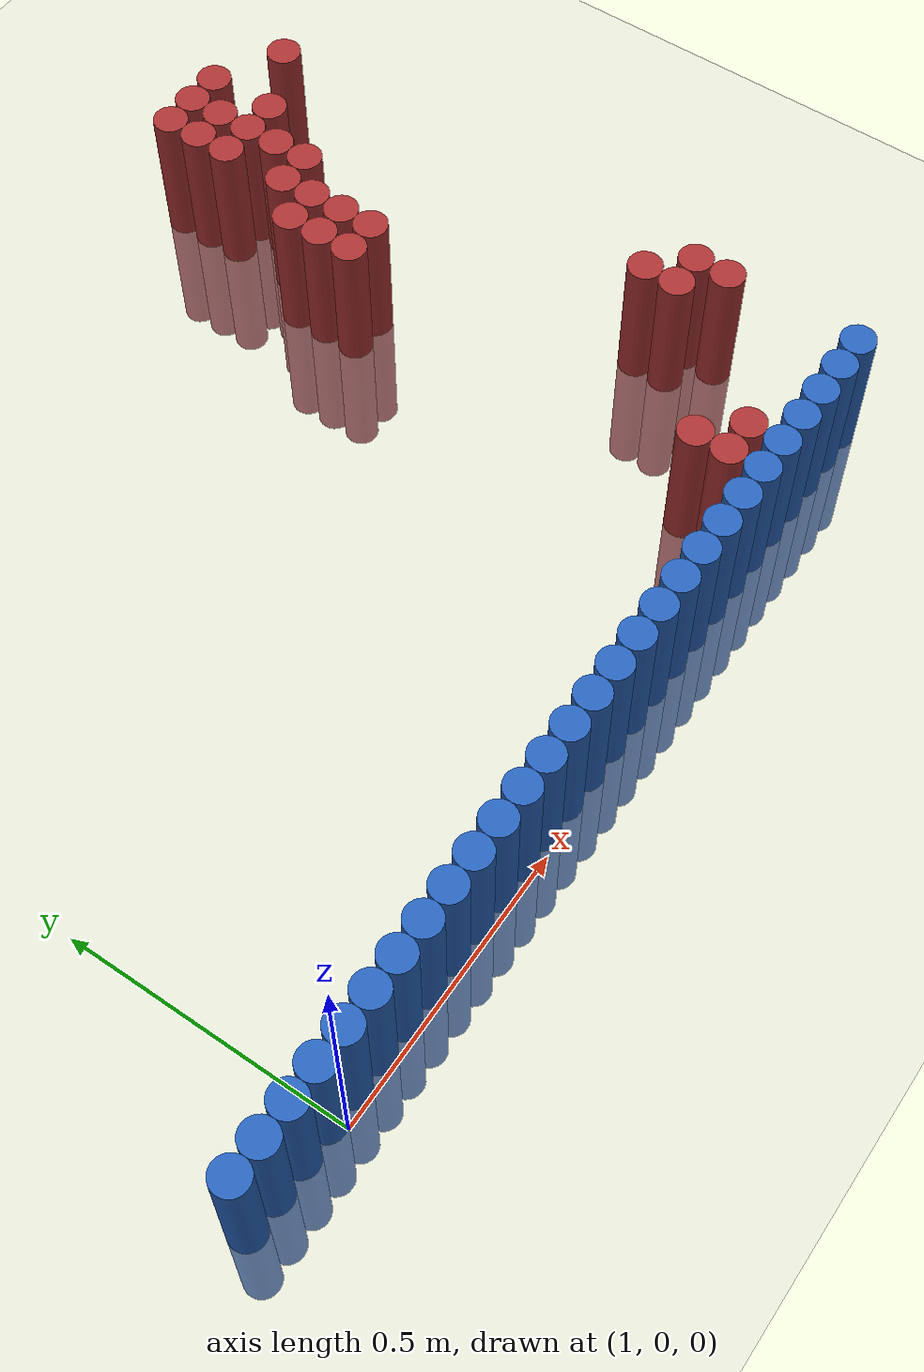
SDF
<sdf version="1.6">
 <world name="default">
  <model name="ground_plane">
   <static>1</static>
   <link name="link">
    <collision name="collision">
     <geometry><plane><normal>0 0 1</normal><size>100 100</size></plane></geometry>
     <surface><friction><ode><mu>100</mu><mu2>50</mu2></ode></friction></surface>
    </collision>
    <visual name="visual">
     <cast_shadows>0</cast_shadows>
     <geometry><plane><normal>0 0 1</normal><size>100 100</size></plane></geometry>
     <material>
      <script><uri>file://media/materials/scripts/gazebo.material</uri><name>Gazebo/Grey</name></script>
     </material>
    </visual>
   </link>
  </model>
  <model name="unit_cylinder_53">
   <static>1</static>
   <pose>0.810000 0.030000 0.000000 0.000000 0.000000 0.000000</pose>
   <link name="link">
    <inertial>
     <mass>1</mass>
     <inertia><ixx>0.145833</ixx><ixy>0</ixy><ixz>0</ixz><iyy>0.145833</iyy><iyz>0</iyz><izz>0.125</izz></inertia>
    </inertial>
    <collision name="collision">
     <geometry><cylinder><radius>0.030000</radius><length>0.5</length></cylinder></geometry>
    </collision>
    <visual name="visual">
     <geometry><cylinder><radius>0.030000</radius><length>0.5</length></cylinder></geometry>
     <material>
      <ambient>0.152000 0.379000 0.720000 1</ambient>
      <diffuse>0.152000 0.379000 0.720000 1</diffuse>
     </material>
     <material>
      <script><name>Gazebo/Grey</name><uri>file://media/materials/scripts/gazebo.material</uri></script>
     </material>
    </visual>
   </link>
  </model>
  <model name="unit_cylinder_55">
   <static>1</static>
   <pose>0.870000 0.030000 0.000000 0.000000 0.000000 0.000000</pose>
   <link name="link">
    <inertial>
     <mass>1</mass>
     <inertia><ixx>0.145833</ixx><ixy>0</ixy><ixz>0</ixz><iyy>0.145833</iyy><iyz>0</iyz><izz>0.125</izz></inertia>
    </inertial>
    <collision name="collision">
     <geometry><cylinder><radius>0.030000</radius><length>0.5</length></cylinder></geometry>
    </collision>
    <visual name="visual">
     <geometry><cylinder><radius>0.030000</radius><length>0.5</length></cylinder></geometry>
     <material>
      <ambient>0.152000 0.379000 0.720000 1</ambient>
      <diffuse>0.152000 0.379000 0.720000 1</diffuse>
     </material>
     <material>
      <script><name>Gazebo/Grey</name><uri>file://media/materials/scripts/gazebo.material</uri></script>
     </material>
    </visual>
   </link>
  </model>
  <model name="unit_cylinder_57">
   <static>1</static>
   <pose>0.930000 0.030000 0.000000 0.000000 0.000000 0.000000</pose>
   <link name="link">
    <inertial>
     <mass>1</mass>
     <inertia><ixx>0.145833</ixx><ixy>0</ixy><ixz>0</ixz><iyy>0.145833</iyy><iyz>0</iyz><izz>0.125</izz></inertia>
    </inertial>
    <collision name="collision">
     <geometry><cylinder><radius>0.030000</radius><length>0.5</length></cylinder></geometry>
    </collision>
    <visual name="visual">
     <geometry><cylinder><radius>0.030000</radius><length>0.5</length></cylinder></geometry>
     <material>
      <ambient>0.152000 0.379000 0.720000 1</ambient>
      <diffuse>0.152000 0.379000 0.720000 1</diffuse>
     </material>
     <material>
      <script><name>Gazebo/Grey</name><uri>file://media/materials/scripts/gazebo.material</uri></script>
     </material>
    </visual>
   </link>
  </model>
  <model name="unit_cylinder_59">
   <static>1</static>
   <pose>0.990000 0.030000 0.000000 0.000000 0.000000 0.000000</pose>
   <link name="link">
    <inertial>
     <mass>1</mass>
     <inertia><ixx>0.145833</ixx><ixy>0</ixy><ixz>0</ixz><iyy>0.145833</iyy><iyz>0</iyz><izz>0.125</izz></inertia>
    </inertial>
    <collision name="collision">
     <geometry><cylinder><radius>0.030000</radius><length>0.5</length></cylinder></geometry>
    </collision>
    <visual name="visual">
     <geometry><cylinder><radius>0.030000</radius><length>0.5</length></cylinder></geometry>
     <material>
      <ambient>0.152000 0.379000 0.720000 1</ambient>
      <diffuse>0.152000 0.379000 0.720000 1</diffuse>
     </material>
     <material>
      <script><name>Gazebo/Grey</name><uri>file://media/materials/scripts/gazebo.material</uri></script>
     </material>
    </visual>
   </link>
  </model>
  <model name="unit_cylinder_61">
   <static>1</static>
   <pose>1.050000 0.030000 0.000000 0.000000 0.000000 0.000000</pose>
   <link name="link">
    <inertial>
     <mass>1</mass>
     <inertia><ixx>0.145833</ixx><ixy>0</ixy><ixz>0</ixz><iyy>0.145833</iyy><iyz>0</iyz><izz>0.125</izz></inertia>
    </inertial>
    <collision name="collision">
     <geometry><cylinder><radius>0.030000</radius><length>0.5</length></cylinder></geometry>
    </collision>
    <visual name="visual">
     <geometry><cylinder><radius>0.030000</radius><length>0.5</length></cylinder></geometry>
     <material>
      <ambient>0.152000 0.379000 0.720000 1</ambient>
      <diffuse>0.152000 0.379000 0.720000 1</diffuse>
     </material>
     <material>
      <script><name>Gazebo/Grey</name><uri>file://media/materials/scripts/gazebo.material</uri></script>
     </material>
    </visual>
   </link>
  </model>
  <model name="unit_cylinder_63">
   <static>1</static>
   <pose>1.110000 0.030000 0.000000 0.000000 0.000000 0.000000</pose>
   <link name="link">
    <inertial>
     <mass>1</mass>
     <inertia><ixx>0.145833</ixx><ixy>0</ixy><ixz>0</ixz><iyy>0.145833</iyy><iyz>0</iyz><izz>0.125</izz></inertia>
    </inertial>
    <collision name="collision">
     <geometry><cylinder><radius>0.030000</radius><length>0.5</length></cylinder></geometry>
    </collision>
    <visual name="visual">
     <geometry><cylinder><radius>0.030000</radius><length>0.5</length></cylinder></geometry>
     <material>
      <ambient>0.152000 0.379000 0.720000 1</ambient>
      <diffuse>0.152000 0.379000 0.720000 1</diffuse>
     </material>
     <material>
      <script><name>Gazebo/Grey</name><uri>file://media/materials/scripts/gazebo.material</uri></script>
     </material>
    </visual>
   </link>
  </model>
  <model name="unit_cylinder_65">
   <static>1</static>
   <pose>1.170000 0.030000 0.000000 0.000000 0.000000 0.000000</pose>
   <link name="link">
    <inertial>
     <mass>1</mass>
     <inertia><ixx>0.145833</ixx><ixy>0</ixy><ixz>0</ixz><iyy>0.145833</iyy><iyz>0</iyz><izz>0.125</izz></inertia>
    </inertial>
    <collision name="collision">
     <geometry><cylinder><radius>0.030000</radius><length>0.5</length></cylinder></geometry>
    </collision>
    <visual name="visual">
     <geometry><cylinder><radius>0.030000</radius><length>0.5</length></cylinder></geometry>
     <material>
      <ambient>0.152000 0.379000 0.720000 1</ambient>
      <diffuse>0.152000 0.379000 0.720000 1</diffuse>
     </material>
     <material>
      <script><name>Gazebo/Grey</name><uri>file://media/materials/scripts/gazebo.material</uri></script>
     </material>
    </visual>
   </link>
  </model>
  <model name="unit_cylinder_67">
   <static>1</static>
   <pose>1.230000 0.030000 0.000000 0.000000 0.000000 0.000000</pose>
   <link name="link">
    <inertial>
     <mass>1</mass>
     <inertia><ixx>0.145833</ixx><ixy>0</ixy><ixz>0</ixz><iyy>0.145833</iyy><iyz>0</iyz><izz>0.125</izz></inertia>
    </inertial>
    <collision name="collision">
     <geometry><cylinder><radius>0.030000</radius><length>0.5</length></cylinder></geometry>
    </collision>
    <visual name="visual">
     <geometry><cylinder><radius>0.030000</radius><length>0.5</length></cylinder></geometry>
     <material>
      <ambient>0.152000 0.379000 0.720000 1</ambient>
      <diffuse>0.152000 0.379000 0.720000 1</diffuse>
     </material>
     <material>
      <script><name>Gazebo/Grey</name><uri>file://media/materials/scripts/gazebo.material</uri></script>
     </material>
    </visual>
   </link>
  </model>
  <model name="unit_cylinder_69">
   <static>1</static>
   <pose>1.290000 0.030000 0.000000 0.000000 0.000000 0.000000</pose>
   <link name="link">
    <inertial>
     <mass>1</mass>
     <inertia><ixx>0.145833</ixx><ixy>0</ixy><ixz>0</ixz><iyy>0.145833</iyy><iyz>0</iyz><izz>0.125</izz></inertia>
    </inertial>
    <collision name="collision">
     <geometry><cylinder><radius>0.030000</radius><length>0.5</length></cylinder></geometry>
    </collision>
    <visual name="visual">
     <geometry><cylinder><radius>0.030000</radius><length>0.5</length></cylinder></geometry>
     <material>
      <ambient>0.152000 0.379000 0.720000 1</ambient>
      <diffuse>0.152000 0.379000 0.720000 1</diffuse>
     </material>
     <material>
      <script><name>Gazebo/Grey</name><uri>file://media/materials/scripts/gazebo.material</uri></script>
     </material>
    </visual>
   </link>
  </model>
  <model name="unit_cylinder_71">
   <static>1</static>
   <pose>1.350000 0.030000 0.000000 0.000000 0.000000 0.000000</pose>
   <link name="link">
    <inertial>
     <mass>1</mass>
     <inertia><ixx>0.145833</ixx><ixy>0</ixy><ixz>0</ixz><iyy>0.145833</iyy><iyz>0</iyz><izz>0.125</izz></inertia>
    </inertial>
    <collision name="collision">
     <geometry><cylinder><radius>0.030000</radius><length>0.5</length></cylinder></geometry>
    </collision>
    <visual name="visual">
     <geometry><cylinder><radius>0.030000</radius><length>0.5</length></cylinder></geometry>
     <material>
      <ambient>0.152000 0.379000 0.720000 1</ambient>
      <diffuse>0.152000 0.379000 0.720000 1</diffuse>
     </material>
     <material>
      <script><name>Gazebo/Grey</name><uri>file://media/materials/scripts/gazebo.material</uri></script>
     </material>
    </visual>
   </link>
  </model>
  <model name="unit_cylinder_73">
   <static>1</static>
   <pose>1.410000 0.030000 0.000000 0.000000 0.000000 0.000000</pose>
   <link name="link">
    <inertial>
     <mass>1</mass>
     <inertia><ixx>0.145833</ixx><ixy>0</ixy><ixz>0</ixz><iyy>0.145833</iyy><iyz>0</iyz><izz>0.125</izz></inertia>
    </inertial>
    <collision name="collision">
     <geometry><cylinder><radius>0.030000</radius><length>0.5</length></cylinder></geometry>
    </collision>
    <visual name="visual">
     <geometry><cylinder><radius>0.030000</radius><length>0.5</length></cylinder></geometry>
     <material>
      <ambient>0.152000 0.379000 0.720000 1</ambient>
      <diffuse>0.152000 0.379000 0.720000 1</diffuse>
     </material>
     <material>
      <script><name>Gazebo/Grey</name><uri>file://media/materials/scripts/gazebo.material</uri></script>
     </material>
    </visual>
   </link>
  </model>
  <model name="unit_cylinder_75">
   <static>1</static>
   <pose>1.470000 0.030000 0.000000 0.000000 0.000000 0.000000</pose>
   <link name="link">
    <inertial>
     <mass>1</mass>
     <inertia><ixx>0.145833</ixx><ixy>0</ixy><ixz>0</ixz><iyy>0.145833</iyy><iyz>0</iyz><izz>0.125</izz></inertia>
    </inertial>
    <collision name="collision">
     <geometry><cylinder><radius>0.030000</radius><length>0.5</length></cylinder></geometry>
    </collision>
    <visual name="visual">
     <geometry><cylinder><radius>0.030000</radius><length>0.5</length></cylinder></geometry>
     <material>
      <ambient>0.152000 0.379000 0.720000 1</ambient>
      <diffuse>0.152000 0.379000 0.720000 1</diffuse>
     </material>
     <material>
      <script><name>Gazebo/Grey</name><uri>file://media/materials/scripts/gazebo.material</uri></script>
     </material>
    </visual>
   </link>
  </model>
  <model name="unit_cylinder_77">
   <static>1</static>
   <pose>1.530000 0.030000 0.000000 0.000000 0.000000 0.000000</pose>
   <link name="link">
    <inertial>
     <mass>1</mass>
     <inertia><ixx>0.145833</ixx><ixy>0</ixy><ixz>0</ixz><iyy>0.145833</iyy><iyz>0</iyz><izz>0.125</izz></inertia>
    </inertial>
    <collision name="collision">
     <geometry><cylinder><radius>0.030000</radius><length>0.5</length></cylinder></geometry>
    </collision>
    <visual name="visual">
     <geometry><cylinder><radius>0.030000</radius><length>0.5</length></cylinder></geometry>
     <material>
      <ambient>0.152000 0.379000 0.720000 1</ambient>
      <diffuse>0.152000 0.379000 0.720000 1</diffuse>
     </material>
     <material>
      <script><name>Gazebo/Grey</name><uri>file://media/materials/scripts/gazebo.material</uri></script>
     </material>
    </visual>
   </link>
  </model>
  <model name="unit_cylinder_79">
   <static>1</static>
   <pose>1.590000 0.030000 0.000000 0.000000 0.000000 0.000000</pose>
   <link name="link">
    <inertial>
     <mass>1</mass>
     <inertia><ixx>0.145833</ixx><ixy>0</ixy><ixz>0</ixz><iyy>0.145833</iyy><iyz>0</iyz><izz>0.125</izz></inertia>
    </inertial>
    <collision name="collision">
     <geometry><cylinder><radius>0.030000</radius><length>0.5</length></cylinder></geometry>
    </collision>
    <visual name="visual">
     <geometry><cylinder><radius>0.030000</radius><length>0.5</length></cylinder></geometry>
     <material>
      <ambient>0.152000 0.379000 0.720000 1</ambient>
      <diffuse>0.152000 0.379000 0.720000 1</diffuse>
     </material>
     <material>
      <script><name>Gazebo/Grey</name><uri>file://media/materials/scripts/gazebo.material</uri></script>
     </material>
    </visual>
   </link>
  </model>
  <model name="unit_cylinder_81">
   <static>1</static>
   <pose>1.650000 0.030000 0.000000 0.000000 0.000000 0.000000</pose>
   <link name="link">
    <inertial>
     <mass>1</mass>
     <inertia><ixx>0.145833</ixx><ixy>0</ixy><ixz>0</ixz><iyy>0.145833</iyy><iyz>0</iyz><izz>0.125</izz></inertia>
    </inertial>
    <collision name="collision">
     <geometry><cylinder><radius>0.030000</radius><length>0.5</length></cylinder></geometry>
    </collision>
    <visual name="visual">
     <geometry><cylinder><radius>0.030000</radius><length>0.5</length></cylinder></geometry>
     <material>
      <ambient>0.152000 0.379000 0.720000 1</ambient>
      <diffuse>0.152000 0.379000 0.720000 1</diffuse>
     </material>
     <material>
      <script><name>Gazebo/Grey</name><uri>file://media/materials/scripts/gazebo.material</uri></script>
     </material>
    </visual>
   </link>
  </model>
  <model name="unit_cylinder_83">
   <static>1</static>
   <pose>1.710000 0.030000 0.000000 0.000000 0.000000 0.000000</pose>
   <link name="link">
    <inertial>
     <mass>1</mass>
     <inertia><ixx>0.145833</ixx><ixy>0</ixy><ixz>0</ixz><iyy>0.145833</iyy><iyz>0</iyz><izz>0.125</izz></inertia>
    </inertial>
    <collision name="collision">
     <geometry><cylinder><radius>0.030000</radius><length>0.5</length></cylinder></geometry>
    </collision>
    <visual name="visual">
     <geometry><cylinder><radius>0.030000</radius><length>0.5</length></cylinder></geometry>
     <material>
      <ambient>0.152000 0.379000 0.720000 1</ambient>
      <diffuse>0.152000 0.379000 0.720000 1</diffuse>
     </material>
     <material>
      <script><name>Gazebo/Grey</name><uri>file://media/materials/scripts/gazebo.material</uri></script>
     </material>
    </visual>
   </link>
  </model>
  <model name="unit_cylinder_85">
   <static>1</static>
   <pose>1.770000 0.030000 0.000000 0.000000 0.000000 0.000000</pose>
   <link name="link">
    <inertial>
     <mass>1</mass>
     <inertia><ixx>0.145833</ixx><ixy>0</ixy><ixz>0</ixz><iyy>0.145833</iyy><iyz>0</iyz><izz>0.125</izz></inertia>
    </inertial>
    <collision name="collision">
     <geometry><cylinder><radius>0.030000</radius><length>0.5</length></cylinder></geometry>
    </collision>
    <visual name="visual">
     <geometry><cylinder><radius>0.030000</radius><length>0.5</length></cylinder></geometry>
     <material>
      <ambient>0.152000 0.379000 0.720000 1</ambient>
      <diffuse>0.152000 0.379000 0.720000 1</diffuse>
     </material>
     <material>
      <script><name>Gazebo/Grey</name><uri>file://media/materials/scripts/gazebo.material</uri></script>
     </material>
    </visual>
   </link>
  </model>
  <model name="unit_cylinder_87">
   <static>1</static>
   <pose>1.830000 0.030000 0.000000 0.000000 0.000000 0.000000</pose>
   <link name="link">
    <inertial>
     <mass>1</mass>
     <inertia><ixx>0.145833</ixx><ixy>0</ixy><ixz>0</ixz><iyy>0.145833</iyy><iyz>0</iyz><izz>0.125</izz></inertia>
    </inertial>
    <collision name="collision">
     <geometry><cylinder><radius>0.030000</radius><length>0.5</length></cylinder></geometry>
    </collision>
    <visual name="visual">
     <geometry><cylinder><radius>0.030000</radius><length>0.5</length></cylinder></geometry>
     <material>
      <ambient>0.152000 0.379000 0.720000 1</ambient>
      <diffuse>0.152000 0.379000 0.720000 1</diffuse>
     </material>
     <material>
      <script><name>Gazebo/Grey</name><uri>file://media/materials/scripts/gazebo.material</uri></script>
     </material>
    </visual>
   </link>
  </model>
  <model name="unit_cylinder_89">
   <static>1</static>
   <pose>1.890000 0.030000 0.000000 0.000000 0.000000 0.000000</pose>
   <link name="link">
    <inertial>
     <mass>1</mass>
     <inertia><ixx>0.145833</ixx><ixy>0</ixy><ixz>0</ixz><iyy>0.145833</iyy><iyz>0</iyz><izz>0.125</izz></inertia>
    </inertial>
    <collision name="collision">
     <geometry><cylinder><radius>0.030000</radius><length>0.5</length></cylinder></geometry>
    </collision>
    <visual name="visual">
     <geometry><cylinder><radius>0.030000</radius><length>0.5</length></cylinder></geometry>
     <material>
      <ambient>0.152000 0.379000 0.720000 1</ambient>
      <diffuse>0.152000 0.379000 0.720000 1</diffuse>
     </material>
     <material>
      <script><name>Gazebo/Grey</name><uri>file://media/materials/scripts/gazebo.material</uri></script>
     </material>
    </visual>
   </link>
  </model>
  <model name="unit_cylinder_91">
   <static>1</static>
   <pose>1.950000 0.030000 0.000000 0.000000 0.000000 0.000000</pose>
   <link name="link">
    <inertial>
     <mass>1</mass>
     <inertia><ixx>0.145833</ixx><ixy>0</ixy><ixz>0</ixz><iyy>0.145833</iyy><iyz>0</iyz><izz>0.125</izz></inertia>
    </inertial>
    <collision name="collision">
     <geometry><cylinder><radius>0.030000</radius><length>0.5</length></cylinder></geometry>
    </collision>
    <visual name="visual">
     <geometry><cylinder><radius>0.030000</radius><length>0.5</length></cylinder></geometry>
     <material>
      <ambient>0.152000 0.379000 0.720000 1</ambient>
      <diffuse>0.152000 0.379000 0.720000 1</diffuse>
     </material>
     <material>
      <script><name>Gazebo/Grey</name><uri>file://media/materials/scripts/gazebo.material</uri></script>
     </material>
    </visual>
   </link>
  </model>
  <model name="unit_cylinder_93">
   <static>1</static>
   <pose>2.010000 0.030000 0.000000 0.000000 0.000000 0.000000</pose>
   <link name="link">
    <inertial>
     <mass>1</mass>
     <inertia><ixx>0.145833</ixx><ixy>0</ixy><ixz>0</ixz><iyy>0.145833</iyy><iyz>0</iyz><izz>0.125</izz></inertia>
    </inertial>
    <collision name="collision">
     <geometry><cylinder><radius>0.030000</radius><length>0.5</length></cylinder></geometry>
    </collision>
    <visual name="visual">
     <geometry><cylinder><radius>0.030000</radius><length>0.5</length></cylinder></geometry>
     <material>
      <ambient>0.152000 0.379000 0.720000 1</ambient>
      <diffuse>0.152000 0.379000 0.720000 1</diffuse>
     </material>
     <material>
      <script><name>Gazebo/Grey</name><uri>file://media/materials/scripts/gazebo.material</uri></script>
     </material>
    </visual>
   </link>
  </model>
  <model name="unit_cylinder_172">
   <static>1</static>
   <pose>2.190000 1.230000 0.000000 0.000000 0.000000 0.000000</pose>
   <link name="link">
    <inertial>
     <mass>1</mass>
     <inertia><ixx>0.145833</ixx><ixy>0</ixy><ixz>0</ixz><iyy>0.145833</iyy><iyz>0</iyz><izz>0.125</izz></inertia>
    </inertial>
    <collision name="collision">
     <geometry><cylinder><radius>0.030000</radius><length>0.5</length></cylinder></geometry>
    </collision>
    <visual name="visual">
     <geometry><cylinder><radius>0.030000</radius><length>0.5</length></cylinder></geometry>
     <material>
      <ambient>0.648000 0.192000 0.192000 1</ambient>
      <diffuse>0.648000 0.192000 0.192000 1</diffuse>
     </material>
     <material>
      <script><name>Gazebo/Grey</name><uri>file://media/materials/scripts/gazebo.material</uri></script>
     </material>
    </visual>
   </link>
  </model>
  <model name="unit_cylinder_173">
   <static>1</static>
   <pose>2.250000 1.230000 0.000000 0.000000 0.000000 0.000000</pose>
   <link name="link">
    <inertial>
     <mass>1</mass>
     <inertia><ixx>0.145833</ixx><ixy>0</ixy><ixz>0</ixz><iyy>0.145833</iyy><iyz>0</iyz><izz>0.125</izz></inertia>
    </inertial>
    <collision name="collision">
     <geometry><cylinder><radius>0.030000</radius><length>0.5</length></cylinder></geometry>
    </collision>
    <visual name="visual">
     <geometry><cylinder><radius>0.030000</radius><length>0.5</length></cylinder></geometry>
     <material>
      <ambient>0.648000 0.192000 0.192000 1</ambient>
      <diffuse>0.648000 0.192000 0.192000 1</diffuse>
     </material>
     <material>
      <script><name>Gazebo/Grey</name><uri>file://media/materials/scripts/gazebo.material</uri></script>
     </material>
    </visual>
   </link>
  </model>
  <model name="unit_cylinder_174">
   <static>1</static>
   <pose>2.310000 1.230000 0.000000 0.000000 0.000000 0.000000</pose>
   <link name="link">
    <inertial>
     <mass>1</mass>
     <inertia><ixx>0.145833</ixx><ixy>0</ixy><ixz>0</ixz><iyy>0.145833</iyy><iyz>0</iyz><izz>0.125</izz></inertia>
    </inertial>
    <collision name="collision">
     <geometry><cylinder><radius>0.030000</radius><length>0.5</length></cylinder></geometry>
    </collision>
    <visual name="visual">
     <geometry><cylinder><radius>0.030000</radius><length>0.5</length></cylinder></geometry>
     <material>
      <ambient>0.648000 0.192000 0.192000 1</ambient>
      <diffuse>0.648000 0.192000 0.192000 1</diffuse>
     </material>
     <material>
      <script><name>Gazebo/Grey</name><uri>file://media/materials/scripts/gazebo.material</uri></script>
     </material>
    </visual>
   </link>
  </model>
  <model name="unit_cylinder_182">
   <static>1</static>
   <pose>2.190000 1.170000 0.000000 0.000000 0.000000 0.000000</pose>
   <link name="link">
    <inertial>
     <mass>1</mass>
     <inertia><ixx>0.145833</ixx><ixy>0</ixy><ixz>0</ixz><iyy>0.145833</iyy><iyz>0</iyz><izz>0.125</izz></inertia>
    </inertial>
    <collision name="collision">
     <geometry><cylinder><radius>0.030000</radius><length>0.5</length></cylinder></geometry>
    </collision>
    <visual name="visual">
     <geometry><cylinder><radius>0.030000</radius><length>0.5</length></cylinder></geometry>
     <material>
      <ambient>0.648000 0.192000 0.192000 1</ambient>
      <diffuse>0.648000 0.192000 0.192000 1</diffuse>
     </material>
     <material>
      <script><name>Gazebo/Grey</name><uri>file://media/materials/scripts/gazebo.material</uri></script>
     </material>
    </visual>
   </link>
  </model>
  <model name="unit_cylinder_183">
   <static>1</static>
   <pose>2.250000 1.170000 0.000000 0.000000 0.000000 0.000000</pose>
   <link name="link">
    <inertial>
     <mass>1</mass>
     <inertia><ixx>0.145833</ixx><ixy>0</ixy><ixz>0</ixz><iyy>0.145833</iyy><iyz>0</iyz><izz>0.125</izz></inertia>
    </inertial>
    <collision name="collision">
     <geometry><cylinder><radius>0.030000</radius><length>0.5</length></cylinder></geometry>
    </collision>
    <visual name="visual">
     <geometry><cylinder><radius>0.030000</radius><length>0.5</length></cylinder></geometry>
     <material>
      <ambient>0.648000 0.192000 0.192000 1</ambient>
      <diffuse>0.648000 0.192000 0.192000 1</diffuse>
     </material>
     <material>
      <script><name>Gazebo/Grey</name><uri>file://media/materials/scripts/gazebo.material</uri></script>
     </material>
    </visual>
   </link>
  </model>
  <model name="unit_cylinder_184">
   <static>1</static>
   <pose>2.430000 1.170000 0.000000 0.000000 0.000000 0.000000</pose>
   <link name="link">
    <inertial>
     <mass>1</mass>
     <inertia><ixx>0.145833</ixx><ixy>0</ixy><ixz>0</ixz><iyy>0.145833</iyy><iyz>0</iyz><izz>0.125</izz></inertia>
    </inertial>
    <collision name="collision">
     <geometry><cylinder><radius>0.030000</radius><length>0.5</length></cylinder></geometry>
    </collision>
    <visual name="visual">
     <geometry><cylinder><radius>0.030000</radius><length>0.5</length></cylinder></geometry>
     <material>
      <ambient>0.648000 0.192000 0.192000 1</ambient>
      <diffuse>0.648000 0.192000 0.192000 1</diffuse>
     </material>
     <material>
      <script><name>Gazebo/Grey</name><uri>file://media/materials/scripts/gazebo.material</uri></script>
     </material>
    </visual>
   </link>
  </model>
  <model name="unit_cylinder_190">
   <static>1</static>
   <pose>2.190000 1.110000 0.000000 0.000000 0.000000 0.000000</pose>
   <link name="link">
    <inertial>
     <mass>1</mass>
     <inertia><ixx>0.145833</ixx><ixy>0</ixy><ixz>0</ixz><iyy>0.145833</iyy><iyz>0</iyz><izz>0.125</izz></inertia>
    </inertial>
    <collision name="collision">
     <geometry><cylinder><radius>0.030000</radius><length>0.5</length></cylinder></geometry>
    </collision>
    <visual name="visual">
     <geometry><cylinder><radius>0.030000</radius><length>0.5</length></cylinder></geometry>
     <material>
      <ambient>0.648000 0.192000 0.192000 1</ambient>
      <diffuse>0.648000 0.192000 0.192000 1</diffuse>
     </material>
     <material>
      <script><name>Gazebo/Grey</name><uri>file://media/materials/scripts/gazebo.material</uri></script>
     </material>
    </visual>
   </link>
  </model>
  <model name="unit_cylinder_191">
   <static>1</static>
   <pose>2.250000 1.110000 0.000000 0.000000 0.000000 0.000000</pose>
   <link name="link">
    <inertial>
     <mass>1</mass>
     <inertia><ixx>0.145833</ixx><ixy>0</ixy><ixz>0</ixz><iyy>0.145833</iyy><iyz>0</iyz><izz>0.125</izz></inertia>
    </inertial>
    <collision name="collision">
     <geometry><cylinder><radius>0.030000</radius><length>0.5</length></cylinder></geometry>
    </collision>
    <visual name="visual">
     <geometry><cylinder><radius>0.030000</radius><length>0.5</length></cylinder></geometry>
     <material>
      <ambient>0.648000 0.192000 0.192000 1</ambient>
      <diffuse>0.648000 0.192000 0.192000 1</diffuse>
     </material>
     <material>
      <script><name>Gazebo/Grey</name><uri>file://media/materials/scripts/gazebo.material</uri></script>
     </material>
    </visual>
   </link>
  </model>
  <model name="unit_cylinder_192">
   <static>1</static>
   <pose>2.310000 1.110000 0.000000 0.000000 0.000000 0.000000</pose>
   <link name="link">
    <inertial>
     <mass>1</mass>
     <inertia><ixx>0.145833</ixx><ixy>0</ixy><ixz>0</ixz><iyy>0.145833</iyy><iyz>0</iyz><izz>0.125</izz></inertia>
    </inertial>
    <collision name="collision">
     <geometry><cylinder><radius>0.030000</radius><length>0.5</length></cylinder></geometry>
    </collision>
    <visual name="visual">
     <geometry><cylinder><radius>0.030000</radius><length>0.5</length></cylinder></geometry>
     <material>
      <ambient>0.648000 0.192000 0.192000 1</ambient>
      <diffuse>0.648000 0.192000 0.192000 1</diffuse>
     </material>
     <material>
      <script><name>Gazebo/Grey</name><uri>file://media/materials/scripts/gazebo.material</uri></script>
     </material>
    </visual>
   </link>
  </model>
  <model name="unit_cylinder_193">
   <static>1</static>
   <pose>2.250000 1.050000 0.000000 0.000000 0.000000 0.000000</pose>
   <link name="link">
    <inertial>
     <mass>1</mass>
     <inertia><ixx>0.145833</ixx><ixy>0</ixy><ixz>0</ixz><iyy>0.145833</iyy><iyz>0</iyz><izz>0.125</izz></inertia>
    </inertial>
    <collision name="collision">
     <geometry><cylinder><radius>0.030000</radius><length>0.5</length></cylinder></geometry>
    </collision>
    <visual name="visual">
     <geometry><cylinder><radius>0.030000</radius><length>0.5</length></cylinder></geometry>
     <material>
      <ambient>0.648000 0.192000 0.192000 1</ambient>
      <diffuse>0.648000 0.192000 0.192000 1</diffuse>
     </material>
     <material>
      <script><name>Gazebo/Grey</name><uri>file://media/materials/scripts/gazebo.material</uri></script>
     </material>
    </visual>
   </link>
  </model>
  <model name="unit_cylinder_199">
   <static>1</static>
   <pose>2.190000 0.990000 0.000000 0.000000 0.000000 0.000000</pose>
   <link name="link">
    <inertial>
     <mass>1</mass>
     <inertia><ixx>0.145833</ixx><ixy>0</ixy><ixz>0</ixz><iyy>0.145833</iyy><iyz>0</iyz><izz>0.125</izz></inertia>
    </inertial>
    <collision name="collision">
     <geometry><cylinder><radius>0.030000</radius><length>0.5</length></cylinder></geometry>
    </collision>
    <visual name="visual">
     <geometry><cylinder><radius>0.030000</radius><length>0.5</length></cylinder></geometry>
     <material>
      <ambient>0.648000 0.192000 0.192000 1</ambient>
      <diffuse>0.648000 0.192000 0.192000 1</diffuse>
     </material>
     <material>
      <script><name>Gazebo/Grey</name><uri>file://media/materials/scripts/gazebo.material</uri></script>
     </material>
    </visual>
   </link>
  </model>
  <model name="unit_cylinder_200">
   <static>1</static>
   <pose>2.250000 0.990000 0.000000 0.000000 0.000000 0.000000</pose>
   <link name="link">
    <inertial>
     <mass>1</mass>
     <inertia><ixx>0.145833</ixx><ixy>0</ixy><ixz>0</ixz><iyy>0.145833</iyy><iyz>0</iyz><izz>0.125</izz></inertia>
    </inertial>
    <collision name="collision">
     <geometry><cylinder><radius>0.030000</radius><length>0.5</length></cylinder></geometry>
    </collision>
    <visual name="visual">
     <geometry><cylinder><radius>0.030000</radius><length>0.5</length></cylinder></geometry>
     <material>
      <ambient>0.648000 0.192000 0.192000 1</ambient>
      <diffuse>0.648000 0.192000 0.192000 1</diffuse>
     </material>
     <material>
      <script><name>Gazebo/Grey</name><uri>file://media/materials/scripts/gazebo.material</uri></script>
     </material>
    </visual>
   </link>
  </model>
  <model name="unit_cylinder_206">
   <static>1</static>
   <pose>2.130000 0.930000 0.000000 0.000000 0.000000 0.000000</pose>
   <link name="link">
    <inertial>
     <mass>1</mass>
     <inertia><ixx>0.145833</ixx><ixy>0</ixy><ixz>0</ixz><iyy>0.145833</iyy><iyz>0</iyz><izz>0.125</izz></inertia>
    </inertial>
    <collision name="collision">
     <geometry><cylinder><radius>0.030000</radius><length>0.5</length></cylinder></geometry>
    </collision>
    <visual name="visual">
     <geometry><cylinder><radius>0.030000</radius><length>0.5</length></cylinder></geometry>
     <material>
      <ambient>0.648000 0.192000 0.192000 1</ambient>
      <diffuse>0.648000 0.192000 0.192000 1</diffuse>
     </material>
     <material>
      <script><name>Gazebo/Grey</name><uri>file://media/materials/scripts/gazebo.material</uri></script>
     </material>
    </visual>
   </link>
  </model>
  <model name="unit_cylinder_207">
   <static>1</static>
   <pose>2.190000 0.930000 0.000000 0.000000 0.000000 0.000000</pose>
   <link name="link">
    <inertial>
     <mass>1</mass>
     <inertia><ixx>0.145833</ixx><ixy>0</ixy><ixz>0</ixz><iyy>0.145833</iyy><iyz>0</iyz><izz>0.125</izz></inertia>
    </inertial>
    <collision name="collision">
     <geometry><cylinder><radius>0.030000</radius><length>0.5</length></cylinder></geometry>
    </collision>
    <visual name="visual">
     <geometry><cylinder><radius>0.030000</radius><length>0.5</length></cylinder></geometry>
     <material>
      <ambient>0.648000 0.192000 0.192000 1</ambient>
      <diffuse>0.648000 0.192000 0.192000 1</diffuse>
     </material>
     <material>
      <script><name>Gazebo/Grey</name><uri>file://media/materials/scripts/gazebo.material</uri></script>
     </material>
    </visual>
   </link>
  </model>
  <model name="unit_cylinder_210">
   <static>1</static>
   <pose>2.130000 0.870000 0.000000 0.000000 0.000000 0.000000</pose>
   <link name="link">
    <inertial>
     <mass>1</mass>
     <inertia><ixx>0.145833</ixx><ixy>0</ixy><ixz>0</ixz><iyy>0.145833</iyy><iyz>0</iyz><izz>0.125</izz></inertia>
    </inertial>
    <collision name="collision">
     <geometry><cylinder><radius>0.030000</radius><length>0.5</length></cylinder></geometry>
    </collision>
    <visual name="visual">
     <geometry><cylinder><radius>0.030000</radius><length>0.5</length></cylinder></geometry>
     <material>
      <ambient>0.648000 0.192000 0.192000 1</ambient>
      <diffuse>0.648000 0.192000 0.192000 1</diffuse>
     </material>
     <material>
      <script><name>Gazebo/Grey</name><uri>file://media/materials/scripts/gazebo.material</uri></script>
     </material>
    </visual>
   </link>
  </model>
  <model name="unit_cylinder_211">
   <static>1</static>
   <pose>2.190000 0.870000 0.000000 0.000000 0.000000 0.000000</pose>
   <link name="link">
    <inertial>
     <mass>1</mass>
     <inertia><ixx>0.145833</ixx><ixy>0</ixy><ixz>0</ixz><iyy>0.145833</iyy><iyz>0</iyz><izz>0.125</izz></inertia>
    </inertial>
    <collision name="collision">
     <geometry><cylinder><radius>0.030000</radius><length>0.5</length></cylinder></geometry>
    </collision>
    <visual name="visual">
     <geometry><cylinder><radius>0.030000</radius><length>0.5</length></cylinder></geometry>
     <material>
      <ambient>0.648000 0.192000 0.192000 1</ambient>
      <diffuse>0.648000 0.192000 0.192000 1</diffuse>
     </material>
     <material>
      <script><name>Gazebo/Grey</name><uri>file://media/materials/scripts/gazebo.material</uri></script>
     </material>
    </visual>
   </link>
  </model>
  <model name="unit_cylinder_215">
   <static>1</static>
   <pose>2.130000 0.810000 0.000000 0.000000 0.000000 0.000000</pose>
   <link name="link">
    <inertial>
     <mass>1</mass>
     <inertia><ixx>0.145833</ixx><ixy>0</ixy><ixz>0</ixz><iyy>0.145833</iyy><iyz>0</iyz><izz>0.125</izz></inertia>
    </inertial>
    <collision name="collision">
     <geometry><cylinder><radius>0.030000</radius><length>0.5</length></cylinder></geometry>
    </collision>
    <visual name="visual">
     <geometry><cylinder><radius>0.030000</radius><length>0.5</length></cylinder></geometry>
     <material>
      <ambient>0.648000 0.192000 0.192000 1</ambient>
      <diffuse>0.648000 0.192000 0.192000 1</diffuse>
     </material>
     <material>
      <script><name>Gazebo/Grey</name><uri>file://media/materials/scripts/gazebo.material</uri></script>
     </material>
    </visual>
   </link>
  </model>
  <model name="unit_cylinder_216">
   <static>1</static>
   <pose>2.190000 0.810000 0.000000 0.000000 0.000000 0.000000</pose>
   <link name="link">
    <inertial>
     <mass>1</mass>
     <inertia><ixx>0.145833</ixx><ixy>0</ixy><ixz>0</ixz><iyy>0.145833</iyy><iyz>0</iyz><izz>0.125</izz></inertia>
    </inertial>
    <collision name="collision">
     <geometry><cylinder><radius>0.030000</radius><length>0.5</length></cylinder></geometry>
    </collision>
    <visual name="visual">
     <geometry><cylinder><radius>0.030000</radius><length>0.5</length></cylinder></geometry>
     <material>
      <ambient>0.648000 0.192000 0.192000 1</ambient>
      <diffuse>0.648000 0.192000 0.192000 1</diffuse>
     </material>
     <material>
      <script><name>Gazebo/Grey</name><uri>file://media/materials/scripts/gazebo.material</uri></script>
     </material>
    </visual>
   </link>
  </model>
  <model name="unit_cylinder_257">
   <static>1</static>
   <pose>2.370000 0.390000 0.000000 0.000000 0.000000 0.000000</pose>
   <link name="link">
    <inertial>
     <mass>1</mass>
     <inertia><ixx>0.145833</ixx><ixy>0</ixy><ixz>0</ixz><iyy>0.145833</iyy><iyz>0</iyz><izz>0.125</izz></inertia>
    </inertial>
    <collision name="collision">
     <geometry><cylinder><radius>0.030000</radius><length>0.5</length></cylinder></geometry>
    </collision>
    <visual name="visual">
     <geometry><cylinder><radius>0.030000</radius><length>0.5</length></cylinder></geometry>
     <material>
      <ambient>0.648000 0.192000 0.192000 1</ambient>
      <diffuse>0.648000 0.192000 0.192000 1</diffuse>
     </material>
     <material>
      <script><name>Gazebo/Grey</name><uri>file://media/materials/scripts/gazebo.material</uri></script>
     </material>
    </visual>
   </link>
  </model>
  <model name="unit_cylinder_261">
   <static>1</static>
   <pose>2.370000 0.330000 0.000000 0.000000 0.000000 0.000000</pose>
   <link name="link">
    <inertial>
     <mass>1</mass>
     <inertia><ixx>0.145833</ixx><ixy>0</ixy><ixz>0</ixz><iyy>0.145833</iyy><iyz>0</iyz><izz>0.125</izz></inertia>
    </inertial>
    <collision name="collision">
     <geometry><cylinder><radius>0.030000</radius><length>0.5</length></cylinder></geometry>
    </collision>
    <visual name="visual">
     <geometry><cylinder><radius>0.030000</radius><length>0.5</length></cylinder></geometry>
     <material>
      <ambient>0.648000 0.192000 0.192000 1</ambient>
      <diffuse>0.648000 0.192000 0.192000 1</diffuse>
     </material>
     <material>
      <script><name>Gazebo/Grey</name><uri>file://media/materials/scripts/gazebo.material</uri></script>
     </material>
    </visual>
   </link>
  </model>
  <model name="unit_cylinder_262">
   <static>1</static>
   <pose>2.430000 0.330000 0.000000 0.000000 0.000000 0.000000</pose>
   <link name="link">
    <inertial>
     <mass>1</mass>
     <inertia><ixx>0.145833</ixx><ixy>0</ixy><ixz>0</ixz><iyy>0.145833</iyy><iyz>0</iyz><izz>0.125</izz></inertia>
    </inertial>
    <collision name="collision">
     <geometry><cylinder><radius>0.030000</radius><length>0.5</length></cylinder></geometry>
    </collision>
    <visual name="visual">
     <geometry><cylinder><radius>0.030000</radius><length>0.5</length></cylinder></geometry>
     <material>
      <ambient>0.648000 0.192000 0.192000 1</ambient>
      <diffuse>0.648000 0.192000 0.192000 1</diffuse>
     </material>
     <material>
      <script><name>Gazebo/Grey</name><uri>file://media/materials/scripts/gazebo.material</uri></script>
     </material>
    </visual>
   </link>
  </model>
  <model name="unit_cylinder_263">
   <static>1</static>
   <pose>2.430000 0.270000 0.000000 0.000000 0.000000 0.000000</pose>
   <link name="link">
    <inertial>
     <mass>1</mass>
     <inertia><ixx>0.145833</ixx><ixy>0</ixy><ixz>0</ixz><iyy>0.145833</iyy><iyz>0</iyz><izz>0.125</izz></inertia>
    </inertial>
    <collision name="collision">
     <geometry><cylinder><radius>0.030000</radius><length>0.5</length></cylinder></geometry>
    </collision>
    <visual name="visual">
     <geometry><cylinder><radius>0.030000</radius><length>0.5</length></cylinder></geometry>
     <material>
      <ambient>0.648000 0.192000 0.192000 1</ambient>
      <diffuse>0.648000 0.192000 0.192000 1</diffuse>
     </material>
     <material>
      <script><name>Gazebo/Grey</name><uri>file://media/materials/scripts/gazebo.material</uri></script>
     </material>
    </visual>
   </link>
  </model>
  <model name="unit_cylinder_271">
   <static>1</static>
   <pose>2.130000 0.150000 0.000000 0.000000 0.000000 0.000000</pose>
   <link name="link">
    <inertial>
     <mass>1</mass>
     <inertia><ixx>0.145833</ixx><ixy>0</ixy><ixz>0</ixz><iyy>0.145833</iyy><iyz>0</iyz><izz>0.125</izz></inertia>
    </inertial>
    <collision name="collision">
     <geometry><cylinder><radius>0.030000</radius><length>0.5</length></cylinder></geometry>
    </collision>
    <visual name="visual">
     <geometry><cylinder><radius>0.030000</radius><length>0.5</length></cylinder></geometry>
     <material>
      <ambient>0.648000 0.192000 0.192000 1</ambient>
      <diffuse>0.648000 0.192000 0.192000 1</diffuse>
     </material>
     <material>
      <script><name>Gazebo/Grey</name><uri>file://media/materials/scripts/gazebo.material</uri></script>
     </material>
    </visual>
   </link>
  </model>
  <model name="unit_cylinder_276">
   <static>1</static>
   <pose>2.130000 0.090000 0.000000 0.000000 0.000000 0.000000</pose>
   <link name="link">
    <inertial>
     <mass>1</mass>
     <inertia><ixx>0.145833</ixx><ixy>0</ixy><ixz>0</ixz><iyy>0.145833</iyy><iyz>0</iyz><izz>0.125</izz></inertia>
    </inertial>
    <collision name="collision">
     <geometry><cylinder><radius>0.030000</radius><length>0.5</length></cylinder></geometry>
    </collision>
    <visual name="visual">
     <geometry><cylinder><radius>0.030000</radius><length>0.5</length></cylinder></geometry>
     <material>
      <ambient>0.648000 0.192000 0.192000 1</ambient>
      <diffuse>0.648000 0.192000 0.192000 1</diffuse>
     </material>
     <material>
      <script><name>Gazebo/Grey</name><uri>file://media/materials/scripts/gazebo.material</uri></script>
     </material>
    </visual>
   </link>
  </model>
  <model name="unit_cylinder_277">
   <static>1</static>
   <pose>2.190000 0.090000 0.000000 0.000000 0.000000 0.000000</pose>
   <link name="link">
    <inertial>
     <mass>1</mass>
     <inertia><ixx>0.145833</ixx><ixy>0</ixy><ixz>0</ixz><iyy>0.145833</iyy><iyz>0</iyz><izz>0.125</izz></inertia>
    </inertial>
    <collision name="collision">
     <geometry><cylinder><radius>0.030000</radius><length>0.5</length></cylinder></geometry>
    </collision>
    <visual name="visual">
     <geometry><cylinder><radius>0.030000</radius><length>0.5</length></cylinder></geometry>
     <material>
      <ambient>0.648000 0.192000 0.192000 1</ambient>
      <diffuse>0.648000 0.192000 0.192000 1</diffuse>
     </material>
     <material>
      <script><name>Gazebo/Grey</name><uri>file://media/materials/scripts/gazebo.material</uri></script>
     </material>
    </visual>
   </link>
  </model>
  <model name="unit_cylinder_290">
   <static>1</static>
   <pose>2.070000 0.030000 0.000000 0.000000 0.000000 0.000000</pose>
   <link name="link">
    <inertial>
     <mass>1</mass>
     <inertia><ixx>0.145833</ixx><ixy>0</ixy><ixz>0</ixz><iyy>0.145833</iyy><iyz>0</iyz><izz>0.125</izz></inertia>
    </inertial>
    <collision name="collision">
     <geometry><cylinder><radius>0.030000</radius><length>0.5</length></cylinder></geometry>
    </collision>
    <visual name="visual">
     <geometry><cylinder><radius>0.030000</radius><length>0.5</length></cylinder></geometry>
     <material>
      <ambient>0.152000 0.379000 0.720000 1</ambient>
      <diffuse>0.152000 0.379000 0.720000 1</diffuse>
     </material>
     <material>
      <script><name>Gazebo/Grey</name><uri>file://media/materials/scripts/gazebo.material</uri></script>
     </material>
    </visual>
   </link>
  </model>
  <model name="unit_cylinder_291">
   <static>1</static>
   <pose>2.130000 0.030000 0.000000 0.000000 0.000000 0.000000</pose>
   <link name="link">
    <inertial>
     <mass>1</mass>
     <inertia><ixx>0.145833</ixx><ixy>0</ixy><ixz>0</ixz><iyy>0.145833</iyy><iyz>0</iyz><izz>0.125</izz></inertia>
    </inertial>
    <collision name="collision">
     <geometry><cylinder><radius>0.030000</radius><length>0.5</length></cylinder></geometry>
    </collision>
    <visual name="visual">
     <geometry><cylinder><radius>0.030000</radius><length>0.5</length></cylinder></geometry>
     <material>
      <ambient>0.152000 0.379000 0.720000 1</ambient>
      <diffuse>0.152000 0.379000 0.720000 1</diffuse>
     </material>
     <material>
      <script><name>Gazebo/Grey</name><uri>file://media/materials/scripts/gazebo.material</uri></script>
     </material>
    </visual>
   </link>
  </model>
  <model name="unit_cylinder_292">
   <static>1</static>
   <pose>2.190000 0.030000 0.000000 0.000000 0.000000 0.000000</pose>
   <link name="link">
    <inertial>
     <mass>1</mass>
     <inertia><ixx>0.145833</ixx><ixy>0</ixy><ixz>0</ixz><iyy>0.145833</iyy><iyz>0</iyz><izz>0.125</izz></inertia>
    </inertial>
    <collision name="collision">
     <geometry><cylinder><radius>0.030000</radius><length>0.5</length></cylinder></geometry>
    </collision>
    <visual name="visual">
     <geometry><cylinder><radius>0.030000</radius><length>0.5</length></cylinder></geometry>
     <material>
      <ambient>0.152000 0.379000 0.720000 1</ambient>
      <diffuse>0.152000 0.379000 0.720000 1</diffuse>
     </material>
     <material>
      <script><name>Gazebo/Grey</name><uri>file://media/materials/scripts/gazebo.material</uri></script>
     </material>
    </visual>
   </link>
  </model>
  <model name="unit_cylinder_293">
   <static>1</static>
   <pose>2.250000 0.030000 0.000000 0.000000 0.000000 0.000000</pose>
   <link name="link">
    <inertial>
     <mass>1</mass>
     <inertia><ixx>0.145833</ixx><ixy>0</ixy><ixz>0</ixz><iyy>0.145833</iyy><iyz>0</iyz><izz>0.125</izz></inertia>
    </inertial>
    <collision name="collision">
     <geometry><cylinder><radius>0.030000</radius><length>0.5</length></cylinder></geometry>
    </collision>
    <visual name="visual">
     <geometry><cylinder><radius>0.030000</radius><length>0.5</length></cylinder></geometry>
     <material>
      <ambient>0.152000 0.379000 0.720000 1</ambient>
      <diffuse>0.152000 0.379000 0.720000 1</diffuse>
     </material>
     <material>
      <script><name>Gazebo/Grey</name><uri>file://media/materials/scripts/gazebo.material</uri></script>
     </material>
    </visual>
   </link>
  </model>
  <model name="unit_cylinder_294">
   <static>1</static>
   <pose>2.310000 0.030000 0.000000 0.000000 0.000000 0.000000</pose>
   <link name="link">
    <inertial>
     <mass>1</mass>
     <inertia><ixx>0.145833</ixx><ixy>0</ixy><ixz>0</ixz><iyy>0.145833</iyy><iyz>0</iyz><izz>0.125</izz></inertia>
    </inertial>
    <collision name="collision">
     <geometry><cylinder><radius>0.030000</radius><length>0.5</length></cylinder></geometry>
    </collision>
    <visual name="visual">
     <geometry><cylinder><radius>0.030000</radius><length>0.5</length></cylinder></geometry>
     <material>
      <ambient>0.152000 0.379000 0.720000 1</ambient>
      <diffuse>0.152000 0.379000 0.720000 1</diffuse>
     </material>
     <material>
      <script><name>Gazebo/Grey</name><uri>file://media/materials/scripts/gazebo.material</uri></script>
     </material>
    </visual>
   </link>
  </model>
  <model name="unit_cylinder_295">
   <static>1</static>
   <pose>2.370000 0.030000 0.000000 0.000000 0.000000 0.000000</pose>
   <link name="link">
    <inertial>
     <mass>1</mass>
     <inertia><ixx>0.145833</ixx><ixy>0</ixy><ixz>0</ixz><iyy>0.145833</iyy><iyz>0</iyz><izz>0.125</izz></inertia>
    </inertial>
    <collision name="collision">
     <geometry><cylinder><radius>0.030000</radius><length>0.5</length></cylinder></geometry>
    </collision>
    <visual name="visual">
     <geometry><cylinder><radius>0.030000</radius><length>0.5</length></cylinder></geometry>
     <material>
      <ambient>0.152000 0.379000 0.720000 1</ambient>
      <diffuse>0.152000 0.379000 0.720000 1</diffuse>
     </material>
     <material>
      <script><name>Gazebo/Grey</name><uri>file://media/materials/scripts/gazebo.material</uri></script>
     </material>
    </visual>
   </link>
  </model>
  <model name="unit_cylinder_296">
   <static>1</static>
   <pose>2.430000 0.030000 0.000000 0.000000 0.000000 0.000000</pose>
   <link name="link">
    <inertial>
     <mass>1</mass>
     <inertia><ixx>0.145833</ixx><ixy>0</ixy><ixz>0</ixz><iyy>0.145833</iyy><iyz>0</iyz><izz>0.125</izz></inertia>
    </inertial>
    <collision name="collision">
     <geometry><cylinder><radius>0.030000</radius><length>0.5</length></cylinder></geometry>
    </collision>
    <visual name="visual">
     <geometry><cylinder><radius>0.030000</radius><length>0.5</length></cylinder></geometry>
     <material>
      <ambient>0.152000 0.379000 0.720000 1</ambient>
      <diffuse>0.152000 0.379000 0.720000 1</diffuse>
     </material>
     <material>
      <script><name>Gazebo/Grey</name><uri>file://media/materials/scripts/gazebo.material</uri></script>
     </material>
    </visual>
   </link>
  </model>
 </world>
</sdf>
